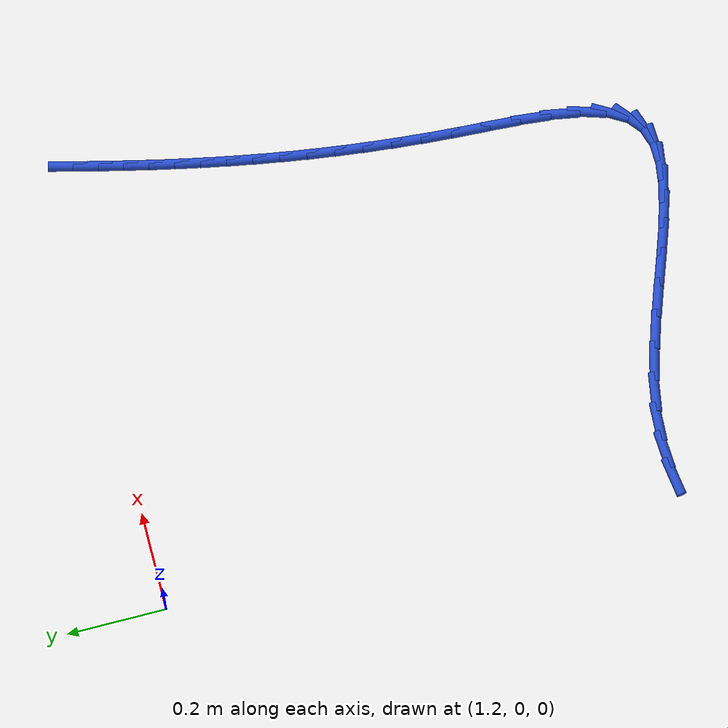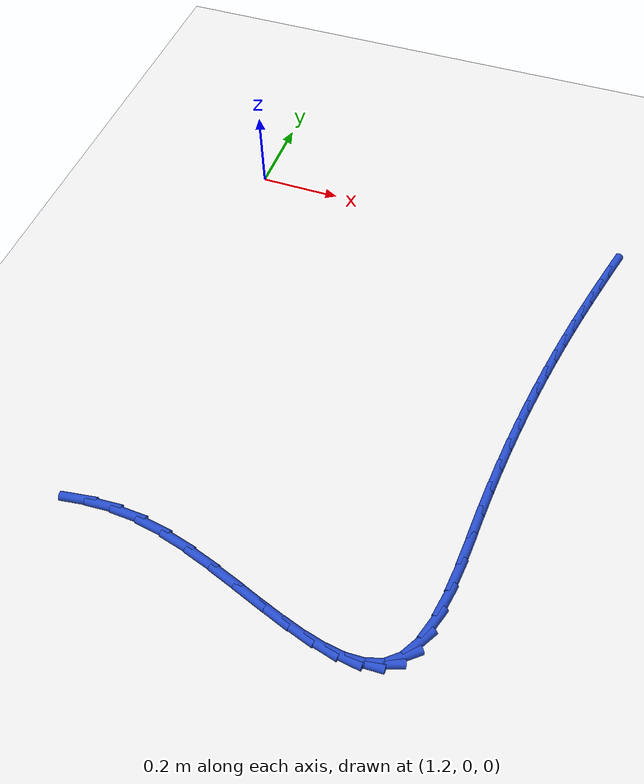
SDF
<sdf version="1.6">
 <world name="default">
  <model name="ground_plane">
   <static>1</static>
   <link name="link">
    <collision name="collision">
     <geometry><plane><normal>0 0 1</normal><size>100 100</size></plane></geometry>
     <surface><friction><ode><mu>100</mu><mu2>50</mu2></ode></friction></surface>
    </collision>
    <visual name="visual">
     <cast_shadows>0</cast_shadows>
     <geometry><plane><normal>0 0 1</normal><size>100 100</size></plane></geometry>
     <material>
      <script><uri>file://media/materials/scripts/gazebo.material</uri><name>Gazebo/WhiteGlow</name></script>
     </material>
    </visual>
   </link>
  </model>
  <model name="line">
   <link name="link_71">
    <pose>2.127544137909585 -0.02753631925541559 0.01 0 1.57 1.3296252855946606</pose>
    <collision name="collision">
     <geometry><cylinder><radius>0.01</radius><length>0.08</length></cylinder></geometry>
    </collision>
    <visual name="visual">
     <material>
      <script><name>Gazebo/Blue</name><uri>file://media/materials/scripts/gazebo.material</uri></script>
     </material>
     <geometry><cylinder><radius>0.01</radius><length>0.08</length></cylinder></geometry>
    </visual>
   </link>
   <link name="link_72">
    <pose>2.115502518336264 -0.07649430531330247 0.01 0 1.57 1.3363273409737746</pose>
    <collision name="collision">
     <geometry><cylinder><radius>0.01</radius><length>0.08</length></cylinder></geometry>
    </collision>
    <visual name="visual">
     <material>
      <script><name>Gazebo/Blue</name><uri>file://media/materials/scripts/gazebo.material</uri></script>
     </material>
     <geometry><cylinder><radius>0.01</radius><length>0.08</length></cylinder></geometry>
    </visual>
   </link>
   <link name="link_73">
    <pose>2.1037837226790645 -0.12555518524149126 0.01 0 1.57 1.344373157456931</pose>
    <collision name="collision">
     <geometry><cylinder><radius>0.01</radius><length>0.08</length></cylinder></geometry>
    </collision>
    <visual name="visual">
     <material>
      <script><name>Gazebo/Blue</name><uri>file://media/materials/scripts/gazebo.material</uri></script>
     </material>
     <geometry><cylinder><radius>0.01</radius><length>0.08</length></cylinder></geometry>
    </visual>
   </link>
   <link name="link_74">
    <pose>2.0924298759270634 -0.1748396854997176 0.01 0 1.57 1.3536997484083129</pose>
    <collision name="collision">
     <geometry><cylinder><radius>0.01</radius><length>0.08</length></cylinder></geometry>
    </collision>
    <visual name="visual">
     <material>
      <script><name>Gazebo/Blue</name><uri>file://media/materials/scripts/gazebo.material</uri></script>
     </material>
     <geometry><cylinder><radius>0.01</radius><length>0.08</length></cylinder></geometry>
    </visual>
   </link>
   <link name="link_75">
    <pose>2.081483103069332 -0.2244685325477193 0.01 0 1.57 1.364227649971051</pose>
    <collision name="collision">
     <geometry><cylinder><radius>0.01</radius><length>0.08</length></cylinder></geometry>
    </collision>
    <visual name="visual">
     <material>
      <script><name>Gazebo/Blue</name><uri>file://media/materials/scripts/gazebo.material</uri></script>
     </material>
     <geometry><cylinder><radius>0.01</radius><length>0.08</length></cylinder></geometry>
    </visual>
   </link>
   <link name="link_76">
    <pose>2.0709855290949477 -0.2745624528452336 0.01 0 1.57 1.3758626357622479</pose>
    <collision name="collision">
     <geometry><cylinder><radius>0.01</radius><length>0.08</length></cylinder></geometry>
    </collision>
    <visual name="visual">
     <material>
      <script><name>Gazebo/Blue</name><uri>file://media/materials/scripts/gazebo.material</uri></script>
     </material>
     <geometry><cylinder><radius>0.01</radius><length>0.08</length></cylinder></geometry>
    </visual>
   </link>
   <link name="link_77">
    <pose>2.0609792789929826 -0.32524217285199747 0.01 0 1.57 1.3884978897235525</pose>
    <collision name="collision">
     <geometry><cylinder><radius>0.01</radius><length>0.08</length></cylinder></geometry>
    </collision>
    <visual name="visual">
     <material>
      <script><name>Gazebo/Blue</name><uri>file://media/materials/scripts/gazebo.material</uri></script>
     </material>
     <geometry><cylinder><radius>0.01</radius><length>0.08</length></cylinder></geometry>
    </visual>
   </link>
   <link name="link_78">
    <pose>2.0515064777525125 -0.376628419027749 0.01 0 1.57 1.4020165523041561</pose>
    <collision name="collision">
     <geometry><cylinder><radius>0.01</radius><length>0.08</length></cylinder></geometry>
    </collision>
    <visual name="visual">
     <material>
      <script><name>Gazebo/Blue</name><uri>file://media/materials/scripts/gazebo.material</uri></script>
     </material>
     <geometry><cylinder><radius>0.01</radius><length>0.08</length></cylinder></geometry>
    </visual>
   </link>
   <link name="link_79">
    <pose>2.042609250362612 -0.4288419178322236 0.01 0 1.57 1.4162945310095587</pose>
    <collision name="collision">
     <geometry><cylinder><radius>0.01</radius><length>0.08</length></cylinder></geometry>
    </collision>
    <visual name="visual">
     <material>
      <script><name>Gazebo/Blue</name><uri>file://media/materials/scripts/gazebo.material</uri></script>
     </material>
     <geometry><cylinder><radius>0.01</radius><length>0.08</length></cylinder></geometry>
    </visual>
   </link>
   <link name="link_80">
    <pose>2.0343297218123544 -0.48200339572515927 0.01 0 1.57 1.4312034493797683</pose>
    <collision name="collision">
     <geometry><cylinder><radius>0.01</radius><length>0.08</length></cylinder></geometry>
    </collision>
    <visual name="visual">
     <material>
      <script><name>Gazebo/Blue</name><uri>file://media/materials/scripts/gazebo.material</uri></script>
     </material>
     <geometry><cylinder><radius>0.01</radius><length>0.08</length></cylinder></geometry>
    </visual>
   </link>
   <link name="link_81">
    <pose>2.026710017090815 -0.536233579166293 0.01 0 1.57 1.4466136009140425</pose>
    <collision name="collision">
     <geometry><cylinder><radius>0.01</radius><length>0.08</length></cylinder></geometry>
    </collision>
    <visual name="visual">
     <material>
      <script><name>Gazebo/Blue</name><uri>file://media/materials/scripts/gazebo.material</uri></script>
     </material>
     <geometry><cylinder><radius>0.01</radius><length>0.08</length></cylinder></geometry>
    </visual>
   </link>
   <link name="link_82">
    <pose>2.0197922611870682 -0.5916531946153631 0.01 0 1.57 1.4623967774550126</pose>
    <collision name="collision">
     <geometry><cylinder><radius>0.01</radius><length>0.08</length></cylinder></geometry>
    </collision>
    <visual name="visual">
     <material>
      <script><name>Gazebo/Blue</name><uri>file://media/materials/scripts/gazebo.material</uri></script>
     </material>
     <geometry><cylinder><radius>0.01</radius><length>0.08</length></cylinder></geometry>
    </visual>
   </link>
   <link name="link_83">
    <pose>2.0136185790901884 -0.6483829685321048 0.01 0 1.57 1.4784288548192208</pose>
    <collision name="collision">
     <geometry><cylinder><radius>0.01</radius><length>0.08</length></cylinder></geometry>
    </collision>
    <visual name="visual">
     <material>
      <script><name>Gazebo/Blue</name><uri>file://media/materials/scripts/gazebo.material</uri></script>
     </material>
     <geometry><cylinder><radius>0.01</radius><length>0.08</length></cylinder></geometry>
    </visual>
   </link>
   <link name="link_84">
    <pose>2.0082310957892493 -0.7065436273762558 0.01 0 1.57 1.4945920403894863</pose>
    <collision name="collision">
     <geometry><cylinder><radius>0.01</radius><length>0.08</length></cylinder></geometry>
    </collision>
    <visual name="visual">
     <material>
      <script><name>Gazebo/Blue</name><uri>file://media/materials/scripts/gazebo.material</uri></script>
     </material>
     <geometry><cylinder><radius>0.01</radius><length>0.08</length></cylinder></geometry>
    </visual>
   </link>
   <link name="link_85">
    <pose>2.003671936273327 -0.7662558976075535 0.01 0 1.57 1.5107702527589402</pose>
    <collision name="collision">
     <geometry><cylinder><radius>0.01</radius><length>0.08</length></cylinder></geometry>
    </collision>
    <visual name="visual">
     <material>
      <script><name>Gazebo/Blue</name><uri>file://media/materials/scripts/gazebo.material</uri></script>
     </material>
     <geometry><cylinder><radius>0.01</radius><length>0.08</length></cylinder></geometry>
    </visual>
   </link>
   <link name="link_86">
    <pose>1.9999828644491169 -0.8276398892168041 0.01 0 1.57 1.5211856129341004</pose>
    <collision name="collision">
     <geometry><cylinder><radius>0.01</radius><length>0.08</length></cylinder></geometry>
    </collision>
    <visual name="visual">
     <material>
      <script><name>Gazebo/Blue</name><uri>file://media/materials/scripts/gazebo.material</uri></script>
     </material>
     <geometry><cylinder><radius>0.01</radius><length>0.08</length></cylinder></geometry>
    </visual>
   </link>
   <link name="link_87">
    <pose>1.996874189954078 -0.8902498267571066 0.01 0 1.57 1.5099762439219886</pose>
    <collision name="collision">
     <geometry><cylinder><radius>0.01</radius><length>0.08</length></cylinder></geometry>
    </collision>
    <visual name="visual">
     <material>
      <script><name>Gazebo/Blue</name><uri>file://media/materials/scripts/gazebo.material</uri></script>
     </material>
     <geometry><cylinder><radius>0.01</radius><length>0.08</length></cylinder></geometry>
    </visual>
   </link>
   <link name="link_88">
    <pose>1.9931121845415385 -0.9520281972332748 0.01 0 1.57 1.4718778906153125</pose>
    <collision name="collision">
     <geometry><cylinder><radius>0.01</radius><length>0.08</length></cylinder></geometry>
    </collision>
    <visual name="visual">
     <material>
      <script><name>Gazebo/Blue</name><uri>file://media/materials/scripts/gazebo.material</uri></script>
     </material>
     <geometry><cylinder><radius>0.01</radius><length>0.08</length></cylinder></geometry>
    </visual>
   </link>
   <link name="link_89">
    <pose>1.9872961620909257 -1.010632443713991 0.01 0 1.57 1.3979088833808244</pose>
    <collision name="collision">
     <geometry><cylinder><radius>0.01</radius><length>0.08</length></cylinder></geometry>
    </collision>
    <visual name="visual">
     <material>
      <script><name>Gazebo/Blue</name><uri>file://media/materials/scripts/gazebo.material</uri></script>
     </material>
     <geometry><cylinder><radius>0.01</radius><length>0.08</length></cylinder></geometry>
    </visual>
   </link>
   <link name="link_90">
    <pose>1.9780254364816638 -1.0637200092679346 0.01 0 1.57 1.2680673224319479</pose>
    <collision name="collision">
     <geometry><cylinder><radius>0.01</radius><length>0.08</length></cylinder></geometry>
    </collision>
    <visual name="visual">
     <material>
      <script><name>Gazebo/Blue</name><uri>file://media/materials/scripts/gazebo.material</uri></script>
     </material>
     <geometry><cylinder><radius>0.01</radius><length>0.08</length></cylinder></geometry>
    </visual>
   </link>
   <link name="link_91">
    <pose>1.9638993215931781 -1.1089483369637878 0.01 0 1.57 1.0437866267493852</pose>
    <collision name="collision">
     <geometry><cylinder><radius>0.01</radius><length>0.08</length></cylinder></geometry>
    </collision>
    <visual name="visual">
     <material>
      <script><name>Gazebo/Blue</name><uri>file://media/materials/scripts/gazebo.material</uri></script>
     </material>
     <geometry><cylinder><radius>0.01</radius><length>0.08</length></cylinder></geometry>
    </visual>
   </link>
   <link name="link_92">
    <pose>1.9435171313048938 -1.143974869870228 0.01 0 1.57 0.6883376067894172</pose>
    <collision name="collision">
     <geometry><cylinder><radius>0.01</radius><length>0.08</length></cylinder></geometry>
    </collision>
    <visual name="visual">
     <material>
      <script><name>Gazebo/Blue</name><uri>file://media/materials/scripts/gazebo.material</uri></script>
     </material>
     <geometry><cylinder><radius>0.01</radius><length>0.08</length></cylinder></geometry>
    </visual>
   </link>
   <link name="link_93">
    <pose>1.915699708649608 -1.1668559559687306 0.01 0 1.57 0.3147810457389325</pose>
    <collision name="collision">
     <geometry><cylinder><radius>0.01</radius><length>0.08</length></cylinder></geometry>
    </collision>
    <visual name="visual">
     <material>
      <script><name>Gazebo/Blue</name><uri>file://media/materials/scripts/gazebo.material</uri></script>
     </material>
     <geometry><cylinder><radius>0.01</radius><length>0.08</length></cylinder></geometry>
    </visual>
   </link>
   <link name="link_94">
    <pose>1.8807119458749748 -1.1782482254941784 0.01 0 1.57 0.03875854393840127</pose>
    <collision name="collision">
     <geometry><cylinder><radius>0.01</radius><length>0.08</length></cylinder></geometry>
    </collision>
    <visual name="visual">
     <material>
      <script><name>Gazebo/Blue</name><uri>file://media/materials/scripts/gazebo.material</uri></script>
     </material>
     <geometry><cylinder><radius>0.01</radius><length>0.08</length></cylinder></geometry>
    </visual>
   </link>
   <link name="link_95">
    <pose>1.839397408695723 -1.1798503191139733 0.01 0 1.57 -0.13773740389114036</pose>
    <collision name="collision">
     <geometry><cylinder><radius>0.01</radius><length>0.08</length></cylinder></geometry>
    </collision>
    <visual name="visual">
     <material>
      <script><name>Gazebo/Blue</name><uri>file://media/materials/scripts/gazebo.material</uri></script>
     </material>
     <geometry><cylinder><radius>0.01</radius><length>0.08</length></cylinder></geometry>
    </visual>
   </link>
   <link name="link_96">
    <pose>1.7926012075880278 -1.1733636591290841 0.01 0 1.57 -0.24526781749172635</pose>
    <collision name="collision">
     <geometry><cylinder><radius>0.01</radius><length>0.08</length></cylinder></geometry>
    </collision>
    <visual name="visual">
     <material>
      <script><name>Gazebo/Blue</name><uri>file://media/materials/scripts/gazebo.material</uri></script>
     </material>
     <geometry><cylinder><radius>0.01</radius><length>0.08</length></cylinder></geometry>
    </visual>
   </link>
   <link name="link_97">
    <pose>1.741168453028063 -1.160489667840481 0.01 0 1.57 -0.30786473600382774</pose>
    <collision name="collision">
     <geometry><cylinder><radius>0.01</radius><length>0.08</length></cylinder></geometry>
    </collision>
    <visual name="visual">
     <material>
      <script><name>Gazebo/Blue</name><uri>file://media/materials/scripts/gazebo.material</uri></script>
     </material>
     <geometry><cylinder><radius>0.01</radius><length>0.08</length></cylinder></geometry>
    </visual>
   </link>
   <link name="link_98">
    <pose>1.6859442554920012 -1.1429297675491328 0.01 0 1.57 -0.33950067584302035</pose>
    <collision name="collision">
     <geometry><cylinder><radius>0.01</radius><length>0.08</length></cylinder></geometry>
    </collision>
    <visual name="visual">
     <material>
      <script><name>Gazebo/Blue</name><uri>file://media/materials/scripts/gazebo.material</uri></script>
     </material>
     <geometry><cylinder><radius>0.01</radius><length>0.08</length></cylinder></geometry>
    </visual>
   </link>
   <link name="link_99">
    <pose>1.627773725456017 -1.1223853805560087 0.01 0 1.57 -0.34745813733053016</pose>
    <collision name="collision">
     <geometry><cylinder><radius>0.01</radius><length>0.08</length></cylinder></geometry>
    </collision>
    <visual name="visual">
     <material>
      <script><name>Gazebo/Blue</name><uri>file://media/materials/scripts/gazebo.material</uri></script>
     </material>
     <geometry><cylinder><radius>0.01</radius><length>0.08</length></cylinder></geometry>
    </visual>
   </link>
   <link name="link_100">
    <pose>1.5675019733962825 -1.1005579291620777 0.01 0 1.57 -0.3348542351354273</pose>
    <collision name="collision">
     <geometry><cylinder><radius>0.01</radius><length>0.08</length></cylinder></geometry>
    </collision>
    <visual name="visual">
     <material>
      <script><name>Gazebo/Blue</name><uri>file://media/materials/scripts/gazebo.material</uri></script>
     </material>
     <geometry><cylinder><radius>0.01</radius><length>0.08</length></cylinder></geometry>
    </visual>
   </link>
   <link name="link_101">
    <pose>1.5059741097889743 -1.0791488356683099 0.01 0 1.57 -0.3019052441676814</pose>
    <collision name="collision">
     <geometry><cylinder><radius>0.01</radius><length>0.08</length></cylinder></geometry>
    </collision>
    <visual name="visual">
     <material>
      <script><name>Gazebo/Blue</name><uri>file://media/materials/scripts/gazebo.material</uri></script>
     </material>
     <geometry><cylinder><radius>0.01</radius><length>0.08</length></cylinder></geometry>
    </visual>
   </link>
   <link name="link_102">
    <pose>1.4440352451102643 -1.0598595223756742 0.01 0 1.57 -0.24638480362492068</pose>
    <collision name="collision">
     <geometry><cylinder><radius>0.01</radius><length>0.08</length></cylinder></geometry>
    </collision>
    <visual name="visual">
     <material>
      <script><name>Gazebo/Blue</name><uri>file://media/materials/scripts/gazebo.material</uri></script>
     </material>
     <geometry><cylinder><radius>0.01</radius><length>0.08</length></cylinder></geometry>
    </visual>
   </link>
   <link name="link_103">
    <pose>1.3825304898363266 -1.0443914115851396 0.01 0 1.57 -0.16366033645726927</pose>
    <collision name="collision">
     <geometry><cylinder><radius>0.01</radius><length>0.08</length></cylinder></geometry>
    </collision>
    <visual name="visual">
     <material>
      <script><name>Gazebo/Blue</name><uri>file://media/materials/scripts/gazebo.material</uri></script>
     </material>
     <geometry><cylinder><radius>0.01</radius><length>0.08</length></cylinder></geometry>
    </visual>
   </link>
   <link name="link_104">
    <pose>1.322304954443334 -1.0344459255976755 0.01 0 1.57 -0.05065674842947263</pose>
    <collision name="collision">
     <geometry><cylinder><radius>0.01</radius><length>0.08</length></cylinder></geometry>
    </collision>
    <visual name="visual">
     <material>
      <script><name>Gazebo/Blue</name><uri>file://media/materials/scripts/gazebo.material</uri></script>
     </material>
     <geometry><cylinder><radius>0.01</radius><length>0.08</length></cylinder></geometry>
    </visual>
   </link>
   <link name="link_105">
    <pose>1.2641314020631047 -1.0314965193279388 0.01 0 1.57 0.05953559131721427</pose>
    <collision name="collision">
     <geometry><cylinder><radius>0.01</radius><length>0.08</length></cylinder></geometry>
    </collision>
    <visual name="visual">
     <material>
      <script><name>Gazebo/Blue</name><uri>file://media/materials/scripts/gazebo.material</uri></script>
     </material>
     <geometry><cylinder><radius>0.01</radius><length>0.08</length></cylinder></geometry>
    </visual>
   </link>
   <link name="link_106">
    <pose>1.2080908270566728 -1.034836875647709 0.01 0 1.57 0.14132473199706486</pose>
    <collision name="collision">
     <geometry><cylinder><radius>0.01</radius><length>0.08</length></cylinder></geometry>
    </collision>
    <visual name="visual">
     <material>
      <script><name>Gazebo/Blue</name><uri>file://media/materials/scripts/gazebo.material</uri></script>
     </material>
     <geometry><cylinder><radius>0.01</radius><length>0.08</length></cylinder></geometry>
    </visual>
   </link>
  </model>
 </world>
</sdf>
